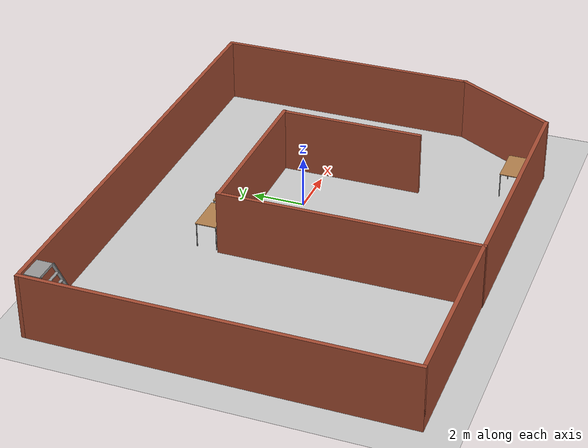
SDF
<sdf version="1.7">
 <world name="default">
  <light name="sun" type="directional">
   <pose>0 0 10 0 -0 0</pose>
   <diffuse>0.8 0.8 0.8 1</diffuse>
   <specular>0.2 0.2 0.2 1</specular>
   <attenuation>
    <range>1000</range>
    <constant>0.9</constant>
    <linear>0.01</linear>
    <quadratic>0.001</quadratic>
   </attenuation>
   <direction>-0.5 0.1 -0.9</direction>
   <spot><inner_angle>0</inner_angle><outer_angle>0</outer_angle><falloff>0</falloff></spot>
  </light>
  <model name="ground_plane">
   <static>1</static>
   <link name="link">
    <collision name="collision">
     <geometry><plane><normal>0 0 1</normal><size>100 100</size></plane></geometry>
     <surface><friction><ode><mu>100</mu><mu2>50</mu2></ode></friction></surface>
    </collision>
    <visual name="visual">
     <cast_shadows>0</cast_shadows>
     <geometry><plane><normal>0 0 1</normal><size>100 100</size></plane></geometry>
     <material>
      <script><uri>file://media/materials/scripts/gazebo.material</uri><name>Gazebo/Grey</name></script>
     </material>
    </visual>
   </link>
  </model>
  <gravity>0 0 -9.8</gravity>
  <magnetic_field>6e-06 2.3e-05 -4.2e-05</magnetic_field>
  <atmosphere type="adiabatic"/>
  <physics type="ode">
   <max_step_size>0.001</max_step_size>
   <real_time_factor>1</real_time_factor>
   <real_time_update_rate>1000</real_time_update_rate>
  </physics>
  <scene><ambient>0.4 0.4 0.4 1</ambient><background>0.7 0.7 0.7 1</background><shadows>1</shadows></scene>
  <spherical_coordinates>
   <surface_model>EARTH_WGS84</surface_model>
   <latitude_deg>0</latitude_deg>
   <longitude_deg>0</longitude_deg>
   <elevation>0</elevation>
   <heading_deg>0</heading_deg>
  </spherical_coordinates>
  <model name="testroom">
   <pose>-1.86127 -1.08012 0 0 -0 0</pose>
   <link name="Wall_0">
    <collision name="Wall_0_Collision">
     <geometry><box><size>9.15 0.15 2.5</size></box></geometry>
     <pose>0 0 1.25 0 -0 0</pose>
    </collision>
    <visual name="Wall_0_Visual">
     <pose>0 0 1.25 0 -0 0</pose>
     <geometry><box><size>9.15 0.15 2.5</size></box></geometry>
     <material>
      <script><uri>file://media/materials/scripts/gazebo.material</uri><name>Gazebo/Bricks</name></script>
      <ambient>1 1 1 1</ambient>
     </material>
     <meta><layer>0</layer></meta>
    </visual>
    <pose>2.36127 -6.91988 0 0 -0 0</pose>
   </link>
   <link name="Wall_10">
    <collision name="Wall_10_Collision">
     <geometry><box><size>14 0.15 2.5</size></box></geometry>
     <pose>0 0 1.25 0 -0 0</pose>
    </collision>
    <visual name="Wall_10_Visual">
     <pose>0 0 1.25 0 -0 0</pose>
     <geometry><box><size>14 0.15 2.5</size></box></geometry>
     <material>
      <script><uri>file://media/materials/scripts/gazebo.material</uri><name>Gazebo/Bricks</name></script>
      <ambient>1 1 1 1</ambient>
     </material>
     <meta><layer>0</layer></meta>
    </visual>
    <pose>-9.06373 0.02233 0 0 -0 -1.5708</pose>
   </link>
   <link name="Wall_11">
    <collision name="Wall_11_Collision">
     <geometry><box><size>7 0.15 2.5</size></box></geometry>
     <pose>0 0 1.25 0 -0 0</pose>
    </collision>
    <visual name="Wall_11_Visual">
     <pose>0 0 1.25 0 -0 0</pose>
     <geometry><box><size>7 0.15 2.5</size></box></geometry>
     <material>
      <script><uri>file://media/materials/scripts/gazebo.material</uri><name>Gazebo/Bricks</name></script>
      <ambient>1 1 1 1</ambient>
     </material>
     <meta><layer>0</layer></meta>
    </visual>
    <pose>-5.63873 -6.90267 0 0 -0 0</pose>
   </link>
   <link name="Wall_3">
    <collision name="Wall_3_Collision">
     <geometry><box><size>9.866 0.15 2.5</size></box></geometry>
     <pose>0 0 1.25 0 -0 0</pose>
    </collision>
    <visual name="Wall_3_Visual">
     <pose>0 0 1.25 0 -0 0</pose>
     <geometry><box><size>9.866 0.15 2.5</size></box></geometry>
     <material>
      <script><uri>file://media/materials/scripts/gazebo.material</uri><name>Gazebo/Bricks</name></script>
      <ambient>1 1 1 1</ambient>
     </material>
     <meta><layer>0</layer></meta>
    </visual>
    <pose>-2.13873 -2.06188 0 0 -0 1.5708</pose>
   </link>
   <link name="Wall_4">
    <collision name="Wall_4_Collision">
     <geometry><box><size>6.57486 0.15 2.5</size></box></geometry>
     <pose>0 0 1.25 0 -0 0</pose>
    </collision>
    <visual name="Wall_4_Visual">
     <pose>0 0 1.25 0 -0 0</pose>
     <geometry><box><size>6.57486 0.15 2.5</size></box></geometry>
     <material>
      <script><uri>file://media/materials/scripts/gazebo.material</uri><name>Gazebo/Bricks</name></script>
      <ambient>1 1 1 1</ambient>
     </material>
     <meta><layer>0</layer></meta>
    </visual>
    <pose>1.0737 2.76553 0 0 -0 0</pose>
   </link>
   <link name="Wall_5">
    <collision name="Wall_5_Collision">
     <geometry><box><size>5.58541 0.15 2.5</size></box></geometry>
     <pose>0 0 1.25 0 -0 0</pose>
    </collision>
    <visual name="Wall_5_Visual">
     <pose>0 0 1.25 0 -0 0</pose>
     <geometry><box><size>5.58541 0.15 2.5</size></box></geometry>
     <material>
      <script><uri>file://media/materials/scripts/gazebo.material</uri><name>Gazebo/Bricks</name></script>
      <ambient>1 1 1 1</ambient>
     </material>
     <meta><layer>0</layer></meta>
    </visual>
    <pose>4.25554 0.047827 0 0 -0 -1.5708</pose>
   </link>
   <link name="Wall_7">
    <collision name="Wall_7_Collision">
     <geometry><box><size>4.5 0.15 2.5</size></box></geometry>
     <pose>0 0 1.25 0 -0 0</pose>
    </collision>
    <visual name="Wall_7_Visual">
     <pose>0 0 1.25 0 -0 0</pose>
     <geometry><box><size>4.5 0.15 2.5</size></box></geometry>
     <material>
      <script><uri>file://media/materials/scripts/gazebo.material</uri><name>Gazebo/Bricks</name></script>
      <ambient>1 1 1 1</ambient>
     </material>
     <meta><layer>0</layer></meta>
    </visual>
    <pose>7.94878 -5.03627 0 0 -0 1.0472</pose>
   </link>
   <link name="Wall_8">
    <collision name="Wall_8_Collision">
     <geometry><box><size>10.25 0.15 2.5</size></box></geometry>
     <pose>0 0 1.25 0 -0 0</pose>
    </collision>
    <visual name="Wall_8_Visual">
     <pose>0 0 1.25 0 -0 0</pose>
     <geometry><box><size>10.25 0.15 2.5</size></box></geometry>
     <material>
      <script><uri>file://media/materials/scripts/gazebo.material</uri><name>Gazebo/Bricks</name></script>
      <ambient>1 1 1 1</ambient>
     </material>
     <meta><layer>0</layer></meta>
    </visual>
    <pose>9.03627 1.89733 0 0 -0 1.5708</pose>
   </link>
   <link name="Wall_9">
    <collision name="Wall_9_Collision">
     <geometry><box><size>18.25 0.15 2.5</size></box></geometry>
     <pose>0 0 1.25 0 -0 0</pose>
    </collision>
    <visual name="Wall_9_Visual">
     <pose>0 0 1.25 0 -0 0</pose>
     <geometry><box><size>18.25 0.15 2.5</size></box></geometry>
     <material>
      <script><uri>file://media/materials/scripts/gazebo.material</uri><name>Gazebo/Bricks</name></script>
      <ambient>1 1 1 1</ambient>
     </material>
     <meta><layer>0</layer></meta>
    </visual>
    <pose>-0.013726 6.94733 0 0 -0 3.14159</pose>
   </link>
   <static>1</static>
  </model>
  <model name="ladder_60deg_0rails">
   <static>1</static>
   <link name="step0">
    <pose>0 0.15396 0.266667 0 -0 0</pose>
    <inertial>
     <mass>9.75482</mass>
     <inertia>
      <ixx>0.00957124</ixx>
      <iyy>0.65963</iyy>
      <izz>0.666842</izz>
      <ixy>0</ixy>
      <ixz>0</ixz>
      <iyz>0</iyz>
     </inertia>
    </inertial>
    <collision name="collision"><geometry><box><size>0.9 0.1016 0.0381</size></box></geometry></collision>
    <visual name="visual">
     <geometry><box><size>0.9 0.1016 0.0381</size></box></geometry>
     <material>
      <script><uri>file://media/materials/scripts/gazebo.material</uri><name>Gazebo/Grey</name></script>
     </material>
    </visual>
   </link>
   <link name="step1">
    <pose>0 0.30792 0.533333 0 -0 0</pose>
    <inertial>
     <mass>9.75482</mass>
     <inertia>
      <ixx>0.00957124</ixx>
      <iyy>0.65963</iyy>
      <izz>0.666842</izz>
      <ixy>0</ixy>
      <ixz>0</ixz>
      <iyz>0</iyz>
     </inertia>
    </inertial>
    <collision name="collision"><geometry><box><size>0.9 0.1016 0.0381</size></box></geometry></collision>
    <visual name="visual">
     <geometry><box><size>0.9 0.1016 0.0381</size></box></geometry>
     <material>
      <script><uri>file://media/materials/scripts/gazebo.material</uri><name>Gazebo/Grey</name></script>
     </material>
    </visual>
   </link>
   <link name="step2">
    <pose>0 0.46188 0.8 0 -0 0</pose>
    <inertial>
     <mass>9.75482</mass>
     <inertia>
      <ixx>0.00957124</ixx>
      <iyy>0.65963</iyy>
      <izz>0.666842</izz>
      <ixy>0</ixy>
      <ixz>0</ixz>
      <iyz>0</iyz>
     </inertia>
    </inertial>
    <collision name="collision"><geometry><box><size>0.9 0.1016 0.0381</size></box></geometry></collision>
    <visual name="visual">
     <geometry><box><size>0.9 0.1016 0.0381</size></box></geometry>
     <material>
      <script><uri>file://media/materials/scripts/gazebo.material</uri><name>Gazebo/Grey</name></script>
     </material>
    </visual>
   </link>
   <link name="step3">
    <pose>0 0.61584 1.06667 0 -0 0</pose>
    <inertial>
     <mass>9.75482</mass>
     <inertia>
      <ixx>0.00957124</ixx>
      <iyy>0.65963</iyy>
      <izz>0.666842</izz>
      <ixy>0</ixy>
      <ixz>0</ixz>
      <iyz>0</iyz>
     </inertia>
    </inertial>
    <collision name="collision"><geometry><box><size>0.9 0.1016 0.0381</size></box></geometry></collision>
    <visual name="visual">
     <geometry><box><size>0.9 0.1016 0.0381</size></box></geometry>
     <material>
      <script><uri>file://media/materials/scripts/gazebo.material</uri><name>Gazebo/Grey</name></script>
     </material>
    </visual>
   </link>
   <link name="step4">
    <pose>0 0.7698 1.33333 0 -0 0</pose>
    <inertial>
     <mass>9.75482</mass>
     <inertia>
      <ixx>0.00957124</ixx>
      <iyy>0.65963</iyy>
      <izz>0.666842</izz>
      <ixy>0</ixy>
      <ixz>0</ixz>
      <iyz>0</iyz>
     </inertia>
    </inertial>
    <collision name="collision"><geometry><box><size>0.9 0.1016 0.0381</size></box></geometry></collision>
    <visual name="visual">
     <geometry><box><size>0.9 0.1016 0.0381</size></box></geometry>
     <material>
      <script><uri>file://media/materials/scripts/gazebo.material</uri><name>Gazebo/Grey</name></script>
     </material>
    </visual>
   </link>
   <link name="step5">
    <pose>0 0.92376 1.6 0 -0 0</pose>
    <inertial>
     <mass>9.75482</mass>
     <inertia>
      <ixx>0.00957124</ixx>
      <iyy>0.65963</iyy>
      <izz>0.666842</izz>
      <ixy>0</ixy>
      <ixz>0</ixz>
      <iyz>0</iyz>
     </inertia>
    </inertial>
    <collision name="collision"><geometry><box><size>0.9 0.1016 0.0381</size></box></geometry></collision>
    <visual name="visual">
     <geometry><box><size>0.9 0.1016 0.0381</size></box></geometry>
     <material>
      <script><uri>file://media/materials/scripts/gazebo.material</uri><name>Gazebo/Grey</name></script>
     </material>
    </visual>
   </link>
   <link name="step6">
    <pose>0 1.07772 1.86667 0 -0 0</pose>
    <inertial>
     <mass>9.75482</mass>
     <inertia>
      <ixx>0.00957124</ixx>
      <iyy>0.65963</iyy>
      <izz>0.666842</izz>
      <ixy>0</ixy>
      <ixz>0</ixz>
      <iyz>0</iyz>
     </inertia>
    </inertial>
    <collision name="collision"><geometry><box><size>0.9 0.1016 0.0381</size></box></geometry></collision>
    <visual name="visual">
     <geometry><box><size>0.9 0.1016 0.0381</size></box></geometry>
     <material>
      <script><uri>file://media/materials/scripts/gazebo.material</uri><name>Gazebo/Grey</name></script>
     </material>
    </visual>
   </link>
   <link name="step7">
    <pose>0 1.23168 2.13333 0 -0 0</pose>
    <inertial>
     <mass>9.75482</mass>
     <inertia>
      <ixx>0.00957124</ixx>
      <iyy>0.65963</iyy>
      <izz>0.666842</izz>
      <ixy>0</ixy>
      <ixz>0</ixz>
      <iyz>0</iyz>
     </inertia>
    </inertial>
    <collision name="collision"><geometry><box><size>0.9 0.1016 0.0381</size></box></geometry></collision>
    <visual name="visual">
     <geometry><box><size>0.9 0.1016 0.0381</size></box></geometry>
     <material>
      <script><uri>file://media/materials/scripts/gazebo.material</uri><name>Gazebo/Grey</name></script>
     </material>
    </visual>
   </link>
   <link name="landing">
    <pose>0 1.68564 2.4 0 -0 0</pose>
    <inertial>
     <mass>57.6072</mass>
     <inertia><ixx>1.73518</ixx><iyy>3.89545</iyy><izz>5.6167</izz><ixy>0</ixy><ixz>0</ixz><iyz>0</iyz></inertia>
    </inertial>
    <collision name="collision"><geometry><box><size>0.9 0.6 0.1016</size></box></geometry></collision>
    <visual name="visual">
     <geometry><box><size>0.9 0.6 0.1016</size></box></geometry>
     <material>
      <script><uri>file://media/materials/scripts/gazebo.material</uri><name>Gazebo/Grey</name></script>
     </material>
    </visual>
   </link>
   <link name="left_side_wall">
    <pose>-0.45 0.69282 1.2 1.0472 -0 0</pose>
    <collision name="collision"><geometry><box><size>0.0508 2.85128 0.13</size></box></geometry></collision>
    <visual name="visual">
     <geometry><box><size>0.0508 2.85128 0.13</size></box></geometry>
     <material>
      <script><uri>file://media/materials/scripts/gazebo.material</uri><name>Gazebo/Grey</name></script>
     </material>
    </visual>
   </link>
   <link name="right_side_wall">
    <pose>0.45 0.69282 1.2 1.0472 -0 0</pose>
    <collision name="collision"><geometry><box><size>0.0508 2.85128 0.13</size></box></geometry></collision>
    <visual name="visual">
     <geometry><box><size>0.0508 2.85128 0.13</size></box></geometry>
     <material>
      <script><uri>file://media/materials/scripts/gazebo.material</uri><name>Gazebo/Grey</name></script>
     </material>
    </visual>
   </link>
   <pose>-10.302 3.7527 0 0 -0 0</pose>
  </model>
  <model name="table">
   <static>1</static>
   <link name="link">
    <collision name="surface">
     <pose>0 0 1 0 -0 0</pose>
     <geometry><box><size>1.5 0.8 0.03</size></box></geometry>
     <surface><friction><ode><mu>0.6</mu><mu2>0.6</mu2></ode></friction></surface>
    </collision>
    <visual name="visual1">
     <pose>0 0 1 0 -0 0</pose>
     <geometry><box><size>1.5 0.8 0.03</size></box></geometry>
     <material>
      <script><uri>file://media/materials/scripts/gazebo.material</uri><name>Gazebo/Wood</name></script>
     </material>
    </visual>
    <collision name="front_left_leg">
     <pose>0.68 0.38 0.5 0 -0 0</pose>
     <geometry><cylinder><radius>0.02</radius><length>1</length></cylinder></geometry>
    </collision>
    <visual name="front_left_leg">
     <pose>0.68 0.38 0.5 0 -0 0</pose>
     <geometry><cylinder><radius>0.02</radius><length>1</length></cylinder></geometry>
     <material>
      <script><uri>file://media/materials/scripts/gazebo.material</uri><name>Gazebo/Grey</name></script>
     </material>
    </visual>
    <collision name="front_right_leg">
     <pose>0.68 -0.38 0.5 0 -0 0</pose>
     <geometry><cylinder><radius>0.02</radius><length>1</length></cylinder></geometry>
    </collision>
    <visual name="front_right_leg">
     <pose>0.68 -0.38 0.5 0 -0 0</pose>
     <geometry><cylinder><radius>0.02</radius><length>1</length></cylinder></geometry>
     <material>
      <script><uri>file://media/materials/scripts/gazebo.material</uri><name>Gazebo/Grey</name></script>
     </material>
    </visual>
    <collision name="back_right_leg">
     <pose>-0.68 -0.38 0.5 0 -0 0</pose>
     <geometry><cylinder><radius>0.02</radius><length>1</length></cylinder></geometry>
    </collision>
    <visual name="back_right_leg">
     <pose>-0.68 -0.38 0.5 0 -0 0</pose>
     <geometry><cylinder><radius>0.02</radius><length>1</length></cylinder></geometry>
     <material>
      <script><uri>file://media/materials/scripts/gazebo.material</uri><name>Gazebo/Grey</name></script>
     </material>
    </visual>
    <collision name="back_left_leg">
     <pose>-0.68 0.38 0.5 0 -0 0</pose>
     <geometry><cylinder><radius>0.02</radius><length>1</length></cylinder></geometry>
    </collision>
    <visual name="back_left_leg">
     <pose>-0.68 0.38 0.5 0 -0 0</pose>
     <geometry><cylinder><radius>0.02</radius><length>1</length></cylinder></geometry>
     <material>
      <script><uri>file://media/materials/scripts/gazebo.material</uri><name>Gazebo/Grey</name></script>
     </material>
    </visual>
   </link>
   <pose>3.86092 -7.16765 0 0 -0 0</pose>
  </model>
  <model name="table_0">
   <static>1</static>
   <link name="link">
    <collision name="surface">
     <pose>0 0 1 0 -0 0</pose>
     <geometry><box><size>1.5 0.8 0.03</size></box></geometry>
     <surface><friction><ode><mu>0.6</mu><mu2>0.6</mu2></ode></friction></surface>
    </collision>
    <visual name="visual1">
     <pose>0 0 1 0 -0 0</pose>
     <geometry><box><size>1.5 0.8 0.03</size></box></geometry>
     <material>
      <script><uri>file://media/materials/scripts/gazebo.material</uri><name>Gazebo/Wood</name></script>
     </material>
    </visual>
    <collision name="front_left_leg">
     <pose>0.68 0.38 0.5 0 -0 0</pose>
     <geometry><cylinder><radius>0.02</radius><length>1</length></cylinder></geometry>
    </collision>
    <visual name="front_left_leg">
     <pose>0.68 0.38 0.5 0 -0 0</pose>
     <geometry><cylinder><radius>0.02</radius><length>1</length></cylinder></geometry>
     <material>
      <script><uri>file://media/materials/scripts/gazebo.material</uri><name>Gazebo/Grey</name></script>
     </material>
    </visual>
    <collision name="front_right_leg">
     <pose>0.68 -0.38 0.5 0 -0 0</pose>
     <geometry><cylinder><radius>0.02</radius><length>1</length></cylinder></geometry>
    </collision>
    <visual name="front_right_leg">
     <pose>0.68 -0.38 0.5 0 -0 0</pose>
     <geometry><cylinder><radius>0.02</radius><length>1</length></cylinder></geometry>
     <material>
      <script><uri>file://media/materials/scripts/gazebo.material</uri><name>Gazebo/Grey</name></script>
     </material>
    </visual>
    <collision name="back_right_leg">
     <pose>-0.68 -0.38 0.5 0 -0 0</pose>
     <geometry><cylinder><radius>0.02</radius><length>1</length></cylinder></geometry>
    </collision>
    <visual name="back_right_leg">
     <pose>-0.68 -0.38 0.5 0 -0 0</pose>
     <geometry><cylinder><radius>0.02</radius><length>1</length></cylinder></geometry>
     <material>
      <script><uri>file://media/materials/scripts/gazebo.material</uri><name>Gazebo/Grey</name></script>
     </material>
    </visual>
    <collision name="back_left_leg">
     <pose>-0.68 0.38 0.5 0 -0 0</pose>
     <geometry><cylinder><radius>0.02</radius><length>1</length></cylinder></geometry>
    </collision>
    <visual name="back_left_leg">
     <pose>-0.68 0.38 0.5 0 -0 0</pose>
     <geometry><cylinder><radius>0.02</radius><length>1</length></cylinder></geometry>
     <material>
      <script><uri>file://media/materials/scripts/gazebo.material</uri><name>Gazebo/Grey</name></script>
     </material>
    </visual>
   </link>
   <pose>-3.25861 2.26531 0 0 -0 0</pose>
  </model>
  <model name="table_1">
   <static>1</static>
   <link name="link">
    <collision name="surface">
     <pose>0 0 1 0 -0 0</pose>
     <geometry><box><size>1.5 0.8 0.03</size></box></geometry>
     <surface><friction><ode><mu>0.6</mu><mu2>0.6</mu2></ode></friction></surface>
    </collision>
    <visual name="visual1">
     <pose>0 0 1 0 -0 0</pose>
     <geometry><box><size>1.5 0.8 0.03</size></box></geometry>
     <material>
      <script><uri>file://media/materials/scripts/gazebo.material</uri><name>Gazebo/Wood</name></script>
     </material>
    </visual>
    <collision name="front_left_leg">
     <pose>0.68 0.38 0.5 0 -0 0</pose>
     <geometry><cylinder><radius>0.02</radius><length>1</length></cylinder></geometry>
    </collision>
    <visual name="front_left_leg">
     <pose>0.68 0.38 0.5 0 -0 0</pose>
     <geometry><cylinder><radius>0.02</radius><length>1</length></cylinder></geometry>
     <material>
      <script><uri>file://media/materials/scripts/gazebo.material</uri><name>Gazebo/Grey</name></script>
     </material>
    </visual>
    <collision name="front_right_leg">
     <pose>0.68 -0.38 0.5 0 -0 0</pose>
     <geometry><cylinder><radius>0.02</radius><length>1</length></cylinder></geometry>
    </collision>
    <visual name="front_right_leg">
     <pose>0.68 -0.38 0.5 0 -0 0</pose>
     <geometry><cylinder><radius>0.02</radius><length>1</length></cylinder></geometry>
     <material>
      <script><uri>file://media/materials/scripts/gazebo.material</uri><name>Gazebo/Grey</name></script>
     </material>
    </visual>
    <collision name="back_right_leg">
     <pose>-0.68 -0.38 0.5 0 -0 0</pose>
     <geometry><cylinder><radius>0.02</radius><length>1</length></cylinder></geometry>
    </collision>
    <visual name="back_right_leg">
     <pose>-0.68 -0.38 0.5 0 -0 0</pose>
     <geometry><cylinder><radius>0.02</radius><length>1</length></cylinder></geometry>
     <material>
      <script><uri>file://media/materials/scripts/gazebo.material</uri><name>Gazebo/Grey</name></script>
     </material>
    </visual>
    <collision name="back_left_leg">
     <pose>-0.68 0.38 0.5 0 -0 0</pose>
     <geometry><cylinder><radius>0.02</radius><length>1</length></cylinder></geometry>
    </collision>
    <visual name="back_left_leg">
     <pose>-0.68 0.38 0.5 0 -0 0</pose>
     <geometry><cylinder><radius>0.02</radius><length>1</length></cylinder></geometry>
     <material>
      <script><uri>file://media/materials/scripts/gazebo.material</uri><name>Gazebo/Grey</name></script>
     </material>
    </visual>
   </link>
   <pose>-1.60326 2.27894 0 0 -0 0</pose>
  </model>
 </world>
</sdf>
